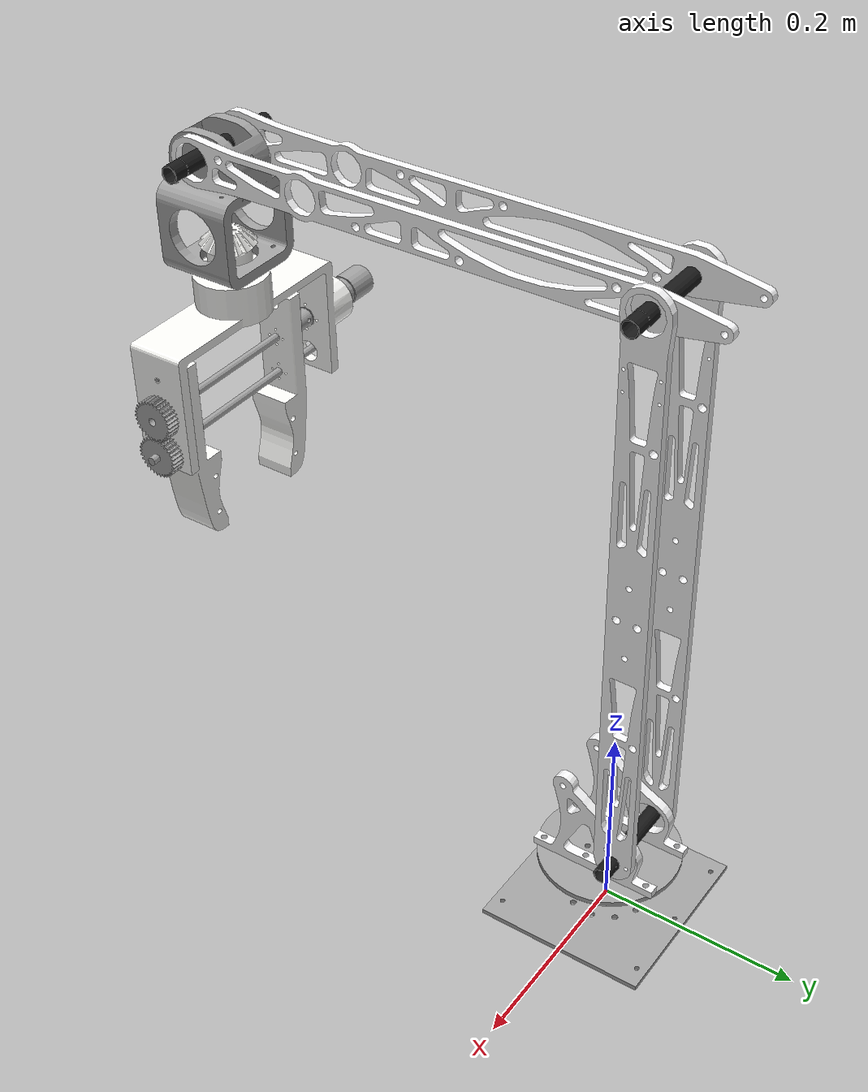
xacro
<?xml version="1.0"?>
<robot xmlns:xacro="http://www.ros.org/wiki/xacro" name="manipulator_urdf">
    <xacro:arg name="initial_positions_file" default="initial_positions.yaml" />

    <!-- Import manipulator_urdf urdf file -->
    <xacro:include filename="$(find manip_description)/urdf/manipulator_urdf.urdf" />

    <!-- Import control_xacro -->
    <xacro:include filename="manipulator_urdf.ros2_control.xacro" />

    <xacro:manipulator_urdf_ros2_control name="FakeSystem" initial_positions_file="$(arg initial_positions_file)"/>

</robot>

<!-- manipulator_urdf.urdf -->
<robot name="manipulator_urdf">

 <!-- Dummy root to base link -->
  <link name="dummy_root"/>
  <joint name="dummy_to_base" type="fixed">
    <parent link="dummy_root"/>
    <child link="base_link"/>
    <origin xyz="0 0 0" rpy="0 0 0"/>
  </joint>

  <link name="base_link">
    <inertial>
      <origin xyz="0.000195357232395832 0 0.0024999999999995" rpy="0 0 0" />
      <mass value="0.139707136084499" />
      <inertia ixx="0.000362153855961995" ixy="1.33420390025088E-19" ixz="-6.69804536161731E-18" iyy="0.000407966760717313" iyz="2.52141449948646E-18" izz="0.000769538503612289" />
    </inertial>
    <visual>
      <origin xyz="0 0 0" rpy="0 0 0" />
      <geometry>
        <mesh filename="package://manip_description/meshes/base_link.STL" />
      </geometry>
      <material name="">
        <color rgba="0.627450980392157 0.627450980392157 0.627450980392157 1" />
      </material>
    </visual>
    <collision>
      <origin xyz="0 0 0" rpy="0 0 0" />
      <geometry>
        <mesh filename="package://manip_description/meshes/base_link.STL" />
      </geometry>
    </collision>
  </link>
  <link name="base_plate2">
    <inertial>
      <origin xyz="0 -2.73796862626519E-06 -5.55111512312578E-16" rpy="0 0 0" />
      <mass value="0.0747522729666689" />
      <inertia ixx="9.24758403358081E-05" ixy="6.22795669521492E-21" ixz="-1.6101929216591E-18" iyy="9.37333665970082E-05" iyz="5.47807548040104E-19" izz="0.000185897739128789" />
    </inertial>
    <visual>
      <origin xyz="0 0 0" rpy="0 0 0" />
      <geometry>
        <mesh filename="package://manip_description/meshes/base_plate2.STL" />
      </geometry>
      <material name="">
        <color rgba="0.627450980392157 0.627450980392157 0.627450980392157 1" />
      </material>
    </visual>
    <collision>
      <origin xyz="0 0 0" rpy="0 0 0" />
      <geometry>
        <mesh filename="package://manip_description/meshes/base_plate2.STL" />
      </geometry>
    </collision>
  </link>
  <joint name="baseplate2_j_base_link" type="revolute">
    <origin xyz="-0.00205319181971286 0 0.0575000000000002" rpy="0 0 0" />
    <parent link="base_link" />
    <child link="base_plate2" />
    <axis xyz="0 0 1" />
    <limit lower="0" upper="6.28" effort="300" velocity="3" />
  </joint>
  <link name="link1_1connector">
    <inertial>
      <origin xyz="-1.78433523512211E-08 0.049721201098077 0.0362112919496935" rpy="0 0 0" />
      <mass value="0.0423060400773229" />
      <inertia ixx="7.17335275476126E-05" ixy="-1.51516466739471E-11" ixz="7.78822258422359E-12" iyy="3.8169797294216E-05" iyz="1.21210221498042E-05" izz="3.42782397609643E-05" />
    </inertial>
    <visual>
      <origin xyz="0 0 0" rpy="0 0 0" />
      <geometry>
        <mesh filename="package://manip_description/meshes/link1_1connector.STL" />
      </geometry>
      <material name="">
        <color rgba="0.96078431372549 0.96078431372549 0.964705882352941 1" />
      </material>
    </visual>
    <collision>
      <origin xyz="0 0 0" rpy="0 0 0" />
      <geometry>
        <mesh filename="package://manip_description/meshes/link1_1connector.STL" />
      </geometry>
    </collision>
  </link>
  <joint name="link1_1connector_j_base_plate_2" type="fixed">
    <origin xyz="0.0300000000000022 -0.055527801921881 0.00650000000000017" rpy="0 0 0" />
    <parent link="base_plate2" />
    <child link="link1_1connector" />
    <axis xyz="0 0 0" />
  </joint>
  <link name="shaft1">
    <inertial>
      <origin xyz="2.22044604925031E-16 -2.22044604925031E-16 -2.22044604925031E-16" rpy="0 0 0" />
      <mass value="0.00614181363776804" />
      <inertia ixx="3.48958785357564E-07" ixy="2.80204717663456E-20" ixz="-1.2457721375434E-19" iyy="8.42636468018142E-06" iyz="-5.1395488726198E-23" izz="8.42636468018142E-06" />
    </inertial>
    <visual>
      <origin xyz="0 0 0" rpy="0 0 0" />
      <geometry>
        <mesh filename="package://manip_description/meshes/shaft1.STL" />
      </geometry>
      <material name="">
        <color rgba="0.0980392156862745 0.0980392156862745 0.0980392156862745 1" />
      </material>
    </visual>
    <collision>
      <origin xyz="0 0 0" rpy="0 0 0" />
      <geometry>
        <mesh filename="package://manip_description/meshes/shaft1.STL" />
      </geometry>
    </collision>
  </link>
  <joint name="shaft1_j_link1_1connector" type="fixed">
    <origin xyz="-0.03 0.081587371771404 0.0289117875999407" rpy="0 0 0" />
    <parent link="link1_1connector" />
    <child link="shaft1" />
    <axis xyz="0 0 0" />
  </joint>
  <link name="link1_1">
    <inertial>
      <origin xyz="-4.64495775176488E-10 -0.000100326015627594 0.283839487614988" rpy="0 0 0" />
      <mass value="0.134763915806832" />
      <inertia ixx="0.00395011652504064" ixy="-3.21643583369989E-13" ixz="2.25726552672763E-12" iyy="0.00392825322370088" iyz="8.89426389737491E-08" izz="2.33007782067884E-05" />
    </inertial>
    <visual>
      <origin xyz="0 0 0" rpy="0 0 0" />
      <geometry>
        <mesh filename="package://manip_description/meshes/link1_1.STL" />
      </geometry>
      <material name="">
        <color rgba="0.96078431372549 0.96078431372549 0.964705882352941 1" />
      </material>
    </visual>
    <collision>
      <origin xyz="0 0 0" rpy="0 0 0" />
      <geometry>
        <mesh filename="package://manip_description/meshes/link1_1.STL" />
      </geometry>
    </collision>
  </link>
  <joint name="link1_1_j_shaft1" type="revolute">
    <origin xyz="0.0390000000000001 0 0" rpy="0 0 0" />
    <parent link="shaft1" />
    <child link="link1_1" />
    <axis xyz="1 0 0" />
    <limit lower="0" upper="1.34" effort="700" velocity="3" />
  </joint>
  <link name="shaft2">
    <inertial>
      <origin xyz="0 0 -4.44089209850063E-16" rpy="0 0 0" />
      <mass value="0.00614181363776804" />
      <inertia ixx="3.48958785357564E-07" ixy="2.80622183067328E-20" ixz="-1.43664514494482E-19" iyy="8.42636468018141E-06" iyz="1.06844162459726E-23" izz="8.42636468018141E-06" />
    </inertial>
    <visual>
      <origin xyz="0 0 0" rpy="0 0 0" />
      <geometry>
        <mesh filename="package://manip_description/meshes/shaft2.STL" />
      </geometry>
      <material name="">
        <color rgba="0.0980392156862745 0.0980392156862745 0.0980392156862745 1" />
      </material>
    </visual>
    <collision>
      <origin xyz="0 0 0" rpy="0 0 0" />
      <geometry>
        <mesh filename="package://manip_description/meshes/shaft2.STL" />
      </geometry>
    </collision>
  </link>
  <joint name="shaft2_j_link1_1" type="fixed">
    <origin xyz="-0.0360000000000091 0 0.58" rpy="0 0 0" />
    <parent link="link1_1" />
    <child link="shaft2" />
    <axis xyz="0 0 0" />
  </joint>
  <link name="link2_1">
    <inertial>
      <origin xyz="4.51383042054943E-09 -0.19237927841626 -0.000741998009010203" rpy="0 0 0" />
      <mass value="0.0786855946436255" />
      <inertia ixx="0.00191785198103841" ixy="4.36717235357529E-11" ixz="-7.63256976813492E-12" iyy="1.19650597389385E-05" iyz="-2.45427436092979E-06" izz="0.00190672624165483" />
    </inertial>
    <visual>
      <origin xyz="0 0 0" rpy="0 0 0" />
      <geometry>
        <mesh filename="package://manip_description/meshes/link2_1.STL" />
      </geometry>
      <material name="">
        <color rgba="0.96078431372549 0.96078431372549 0.964705882352941 1" />
      </material>
    </visual>
    <collision>
      <origin xyz="0 0 0" rpy="0 0 0" />
      <geometry>
        <mesh filename="package://manip_description/meshes/link2_1.STL" />
      </geometry>
    </collision>
  </link>
  <joint name="shaft2_j_link2_1" type="revolute">
    <origin xyz="0.028 0 0" rpy="0 0 0" />
    <parent link="shaft2" />
    <child link="link2_1" />
    <axis xyz="1 0 0" />
    <limit lower="-1.047" upper="0.68" effort="500" velocity="3" />
  </joint>
  <link name="shaft3">
    <inertial>
      <origin xyz="2.22044604925031E-16 1.11022302462516E-16 -4.44089209850063E-16" rpy="0 0 0" />
      <mass value="0.00614181363776805" />
      <inertia ixx="3.48958785357564E-07" ixy="2.77982763609887E-20" ixz="-1.43792784651756E-19" iyy="8.42636468018144E-06" iyz="1.96800054119603E-24" izz="8.42636468018144E-06" />
    </inertial>
    <visual>
      <origin xyz="0 0 0" rpy="0 0 0" />
      <geometry>
        <mesh filename="package://manip_description/meshes/shaft3.STL" />
      </geometry>
      <material name="">
        <color rgba="0.0980392156862745 0.0980392156862745 0.0980392156862745 1" />
      </material>
    </visual>
    <collision>
      <origin xyz="0 0 0" rpy="0 0 0" />
      <geometry>
        <mesh filename="package://manip_description/meshes/shaft3.STL" />
      </geometry>
    </collision>
  </link>
  <joint name="saft3_j_link2_1" type="fixed">
    <origin xyz="-0.0310000000000019 -0.44 0" rpy="0 0 0" />
    <parent link="link2_1" />
    <child link="shaft3" />
    <axis xyz="0 0 0" />
  </joint>
  <link name="link3">
    <inertial>
      <origin xyz="-0.000156441051319289 5.65094705323177E-05 -0.0450975512468108" rpy="0 0 0" />
      <mass value="0.224806547118785" />
      <inertia ixx="0.000456163453198375" ixy="6.46252776641713E-10" ixz="-5.87763952919612E-07" iyy="0.000483845569489242" iyz="6.28694008517293E-08" izz="0.000289692982245641" />
    </inertial>
    <visual>
      <origin xyz="0 0 0" rpy="0 0 0" />
      <geometry>
        <mesh filename="package://manip_description/meshes/link3.STL" />
      </geometry>
      <material name="">
        <color rgba="0.627450980392157 0.627450980392157 0.627450980392157 1" />
      </material>
    </visual>
    <collision>
      <origin xyz="0 0 0" rpy="0 0 0" />
      <geometry>
        <mesh filename="package://manip_description/meshes/link3.STL" />
      </geometry>
    </collision>
  </link>
  <joint name="link3_j_shaft3" type="revolute">
    <origin xyz="0 0 0" rpy="0 0 0" />
    <parent link="shaft3" />
    <child link="link3" />
    <axis xyz="1 0 0" />
    <limit lower="-3.14" upper="0.11" effort="10" velocity="3" />
  </joint>
  <link name="bevel1">
    <inertial>
      <origin xyz="1.57568920888806E-06 8.72524664519148E-07 0.00618798510990271" rpy="0 0 0" />
      <mass value="0.0461593276316264" />
      <inertia ixx="1.04939527608266E-05" ixy="-9.91261610146335E-10" ixz="-6.27975101843376E-10" iyy="1.04918542659061E-05" iyz="-3.50073583797341E-10" izz="1.00345461695118E-05" />
    </inertial>
    <visual>
      <origin xyz="0 0 0" rpy="0 0 0" />
      <geometry>
        <mesh filename="package://manip_description/meshes/bevel1.STL" />
      </geometry>
      <material name="">
        <color rgba="0.964705882352941 0.964705882352941 0.952941176470588 1" />
      </material>
    </visual>
    <collision>
      <origin xyz="0 0 0" rpy="0 0 0" />
      <geometry>
        <mesh filename="package://manip_description/meshes/bevel1.STL" />
      </geometry>
    </collision>
  </link>
  <joint name="bevel1_j_link3" type="revolute">
    <origin xyz="-0.000499499999997655 0 -0.104999996518335" rpy="0 0 0" />
    <parent link="link3" />
    <child link="bevel1" />
    <axis xyz="0 0 1" />
    <limit lower="0" upper="6.283" effort="0.5" velocity="3" />
  </joint>
  <link name="gripper">
    <inertial>
      <origin xyz="-0.00947390080722954 7.99360577730113E-15 -0.032696228721947" rpy="0 0 0" />
      <mass value="0.341464156501705" />
      <inertia ixx="0.000604244616763682" ixy="5.09909105392224E-18" ixz="-0.000143274519057227" iyy="0.00239586527325235" iyz="-2.1241809513346E-18" izz="0.00198563943087105" />
    </inertial>
    <visual>
      <origin xyz="0 0 0" rpy="0 0 0" />
      <geometry>
        <mesh filename="package://manip_description/meshes/gripper.STL" />
      </geometry>
      <material name="">
        <color rgba="0.964705882352941 0.964705882352941 0.952941176470588 1" />
      </material>
    </visual>
    <collision>
      <origin xyz="0 0 0" rpy="0 0 0" />
      <geometry>
        <mesh filename="package://manip_description/meshes/gripper.STL" />
      </geometry>
    </collision>
  </link>
  <joint name="gripper_j_bevel1" type="fixed">
    <origin xyz="0 0 -0.0299324571895392" rpy="0 0 0" />
    <parent link="bevel1" />
    <child link="gripper" />
    <axis xyz="0 0 0" />
    <limit lower="0" upper="6.28" effort="0.5" velocity="3" />
  </joint>
  <link name="ss_rod">
    <inertial>
      <origin xyz="0.0975000000000004 7.66053886991358E-15 0" rpy="0 0 0" />
      <mass value="0.00282743338823081" />
      <inertia ixx="5.65486677646163E-09" ixy="4.44618822704266E-20" ixz="-1.86006780902391E-19" iyy="1.1931062039987E-05" iyz="6.84209305664013E-34" izz="1.1931062039987E-05" />
    </inertial>
    <visual>
      <origin xyz="0 0 0" rpy="0 0 0" />
      <geometry>
        <mesh filename="package://manip_description/meshes/ss_rod.STL" />
      </geometry>
      <material name="">
        <color rgba="0.627450980392157 0.627450980392157 0.627450980392157 1" />
      </material>
    </visual>
    <collision>
      <origin xyz="0 0 0" rpy="0 0 0" />
      <geometry>
        <mesh filename="package://manip_description/meshes/ss_rod.STL" />
      </geometry>
    </collision>
  </link>
  <joint name="ss_rod_j_gripper" type="fixed">
    <origin xyz="-0.102499999999999 0 -0.0410675393287978" rpy="0 0 0" />
    <parent link="gripper" />
    <child link="ss_rod" />
    <axis xyz="0 0 0" />
  </joint>
  <link name="threded_rod_up">
    <inertial>
      <origin xyz="2.22044604925031E-16 7.82707232360735E-15 -1.77635683940025E-15" rpy="0 0 0" />
      <mass value="0.0121489228511336" />
      <inertia ixx="9.39627397423046E-08" ixy="2.1935928770699E-19" ixz="-1.00881315866112E-18" iyy="6.33226212195255E-05" iyz="3.53881103869049E-33" izz="6.33226212195255E-05" />
    </inertial>
    <visual>
      <origin xyz="0 0 0" rpy="0 0 0" />
      <geometry>
        <mesh filename="package://manip_description/meshes/threded_rod_up.STL" />
      </geometry>
      <material name="">
        <color rgba="0.627450980392157 0.627450980392157 0.627450980392157 1" />
      </material>
    </visual>
    <collision>
      <origin xyz="0 0 0" rpy="0 0 0" />
      <geometry>
        <mesh filename="package://manip_description/meshes/threded_rod_up.STL" />
      </geometry>
    </collision>
  </link>
  <joint name="threded_rod_up_j_gripper" type="fixed">
    <origin xyz="-0.017499999999999 0 -0.0770675393287958" rpy="0 0 0" />
    <parent link="gripper" />
    <child link="threded_rod_up" />
    <axis xyz="0 0 0" />
  </joint>
  <link name="claw2">
    <inertial>
      <origin xyz="-0.00296412475331143 -3.50262785014932E-06 -0.0565127254779711" rpy="0 0 0" />
      <mass value="0.134410672799194" />
      <inertia ixx="0.000371952908819462" ixy="5.50044665304092E-09" ixz="3.30601032585245E-05" iyy="0.000362575120952868" iyz="-2.02999010553453E-09" izz="2.71292076611256E-05" />
    </inertial>
    <visual>
      <origin xyz="0 0 0" rpy="0 0 0" />
      <geometry>
        <mesh filename="package://manip_description/meshes/claw2.STL" />
      </geometry>
      <material name="">
        <color rgba="0.964705882352941 0.964705882352941 0.952941176470588 1" />
      </material>
    </visual>
    <collision>
      <origin xyz="0 0 0" rpy="0 0 0" />
      <geometry>
        <mesh filename="package://manip_description/meshes/claw2.STL" />
      </geometry>
    </collision>
  </link>
  <joint name="claw2_j_threded_rod_up" type="prismatic">
    <origin xyz="-0.0337770678111837 0 0" rpy="0 0 0" />
    <parent link="threded_rod_up" />
    <child link="claw2" />
    <axis xyz="1 0 0" />
    <limit lower="0.00" upper="0.04" effort="3" velocity="3" />
  </joint>
  <link name="claw1">
    <inertial>
      <origin xyz="-0.00575880743550372 3.50262773646248E-06 -0.0565127254779658" rpy="0 0 0" />
      <mass value="0.134410672799193" />
      <inertia ixx="0.00037195290881946" ixy="5.50044657542522E-09" ixz="-3.30601032585136E-05" iyy="0.000362575120952863" iyz="2.02998931355451E-09" izz="2.71292076611234E-05" />
    </inertial>
    <visual>
      <origin xyz="0 0 0" rpy="0 0 0" />
      <geometry>
        <mesh filename="package://manip_description/meshes/claw1.STL" />
      </geometry>
      <material name="">
        <color rgba="0.964705882352941 0.964705882352941 0.952941176470588 1" />
      </material>
    </visual>
    <collision>
      <origin xyz="0 0 0" rpy="0 0 0" />
      <geometry>
        <mesh filename="package://manip_description/meshes/claw1.STL" />
      </geometry>
    </collision>
  </link>
  <joint name="claw1_j_threded_rod_up" type="prismatic">
    <origin xyz="0.1025 0 -0.000298999999999827" rpy="0 0 0" />
    <parent link="threded_rod_up" />
    <child link="claw1" />
    <axis xyz="1 0 0" />
    <limit lower="-0.045" upper="0.0" effort="3" velocity="3" />
    <mimic joint="claw2_j_threded_rod_up" multiplier="-1.0" offset="0.0"/>
  </joint>
  <link name="motor">
    <inertial>
      <origin xyz="-0.043637951435167 7.56764734016757E-06 1.05474587688281E-05" rpy="0 0 0" />
      <mass value="0.0558864492200027" />
      <inertia ixx="5.79372255970093E-06" ixy="1.39156228330173E-08" ixz="1.93949918217533E-08" iyy="3.78532048080649E-05" iyz="5.61857630483807E-09" izz="3.7857004489853E-05" />
    </inertial>
    <visual>
      <origin xyz="0 0 0" rpy="0 0 0" />
      <geometry>
        <mesh filename="package://manip_description/meshes/motor.STL" />
      </geometry>
      <material name="">
        <color rgba="0.627450980392157 0.627450980392157 0.627450980392157 1" />
      </material>
    </visual>
    <collision>
      <origin xyz="0 0 0" rpy="0 0 0" />
      <geometry>
        <mesh filename="package://manip_description/meshes/motor.STL" />
      </geometry>
    </collision>
  </link>
  <joint name="motor_j_gripper" type="fixed">
    <origin xyz="-0.0999999999999981 0 -0.0770675393287972" rpy="0 0 0" />
    <parent link="gripper" />
    <child link="motor" />
    <axis xyz="0 0 0" />
  </joint>
  <link name="shaft_coupler">
    <inertial>
      <origin xyz="3.43275563530199E-09 2.51912170445845E-06 -1.8443343692276E-06" rpy="0 0 0" />
      <mass value="0.00642699718557648" />
      <inertia ixx="2.90757438236863E-07" ixy="-7.46111633042868E-14" ixz="-1.46031394690198E-13" iyy="6.22303514989085E-07" iyz="-1.47141090258298E-10" izz="6.22210285079933E-07" />
    </inertial>
    <visual>
      <origin xyz="0 0 0" rpy="0 0 0" />
      <geometry>
        <mesh filename="package://manip_description/meshes/shaft_coupler.STL" />
      </geometry>
      <material name="">
        <color rgba="0.627450980392157 0.627450980392157 0.627450980392157 1" />
      </material>
    </visual>
    <collision>
      <origin xyz="0 0 0" rpy="0 0 0" />
      <geometry>
        <mesh filename="package://manip_description/meshes/shaft_coupler.STL" />
      </geometry>
    </collision>
  </link>
  <joint name="shaft_coupler_j_gripper" type="fixed">
    <origin xyz="-0.0825 -0.00017997 -0.076937" rpy="0 0 0" />
    <parent link="gripper" />
    <child link="shaft_coupler" />
    <axis xyz="0 0 0" />
  </joint>
  <link name="gear1">
    <inertial>
      <origin xyz="0.0107326910509893 -4.05231403988182E-15 -3.99680288865056E-15" rpy="0 0 0" />
      <mass value="0.0170959118700181" />
      <inertia ixx="2.66648678784873E-06" ixy="3.60545421608951E-19" ixz="3.76705672624576E-20" iyy="2.15564618007614E-06" iyz="-1.24153481093661E-15" izz="2.15564617597141E-06" />
    </inertial>
    <visual>
      <origin xyz="0 0 0" rpy="0 0 0" />
      <geometry>
        <mesh filename="package://manip_description/meshes/gear1.STL" />
      </geometry>
      <material name="">
        <color rgba="0.627450980392157 0.627450980392157 0.627450980392157 1" />
      </material>
    </visual>
    <collision>
      <origin xyz="0 0 0" rpy="0 0 0" />
      <geometry>
        <mesh filename="package://manip_description/meshes/gear1.STL" />
      </geometry>
    </collision>
  </link>
  <joint name="gear1_j_gripper" type="fixed">
    <origin xyz="0.1 0 -0.077068" rpy="0 0 0" />
    <parent link="gripper" />
    <child link="gear1" />
    <axis xyz="0 0 0" />
  </joint>
  <link name="thrededrod_down">
    <inertial>
      <origin xyz="-2.22044604925031E-16 8.27116153345742E-15 -1.33226762955019E-15" rpy="0 0 0" />
      <mass value="0.0121489228511336" />
      <inertia ixx="9.39627397423046E-08" ixy="2.1935928770699E-19" ixz="-1.00881315866112E-18" iyy="6.33226212195255E-05" iyz="3.53881103869049E-33" izz="6.33226212195255E-05" />
    </inertial>
    <visual>
      <origin xyz="0 0 0" rpy="0 0 0" />
      <geometry>
        <mesh filename="package://manip_description/meshes/thrededrod_down.STL" />
      </geometry>
      <material name="">
        <color rgba="0.627450980392157 0.627450980392157 0.627450980392157 1" />
      </material>
    </visual>
    <collision>
      <origin xyz="0 0 0" rpy="0 0 0" />
      <geometry>
        <mesh filename="package://manip_description/meshes/thrededrod_down.STL" />
      </geometry>
    </collision>
  </link>
  <joint name="threded_rod_down_j_gripper" type="fixed">
    <origin xyz="0.0025 0 -0.11487" rpy="0 0 0" />
    <parent link="gripper" />
    <child link="thrededrod_down" />
    <axis xyz="0 0 0" />
  </joint>
  <link name="gear2">
    <inertial>
      <origin xyz="0.0107326910509891 -1.37667655053519E-14 0" rpy="0 0 0" />
      <mass value="0.0170959118700137" />
      <inertia ixx="2.66648678784784E-06" ixy="4.05407438152039E-19" ixz="1.20367294634015E-20" iyy="2.15564617709311E-06" iyz="2.21072179691744E-15" izz="2.15564617895344E-06" />
    </inertial>
    <visual>
      <origin xyz="0 0 0" rpy="0 0 0" />
      <geometry>
        <mesh filename="package://manip_description/meshes/gear2.STL" />
      </geometry>
      <material name="">
        <color rgba="0.627450980392157 0.627450980392157 0.627450980392157 1" />
      </material>
    </visual>
    <collision>
      <origin xyz="0 0 0" rpy="0 0 0" />
      <geometry>
        <mesh filename="package://manip_description/meshes/gear2.STL" />
      </geometry>
    </collision>
  </link>
  <joint name="gear2_j_gripper" type="fixed">
    <origin xyz="0.1 0 -0.11487" rpy="0 0 0" />
    <parent link="gripper" />
    <child link="gear2" />
    <axis xyz="0 0 0" />
  </joint>
  <link name="link2_2">
    <inertial>
      <origin xyz="-4.51383175281705E-09 -0.192379652731722 0.000637447708020655" rpy="0 0 0" />
      <mass value="0.0786855940633513" />
      <inertia ixx="0.00191785196637821" ixy="-4.36675770328836E-11" ixz="-7.66566324060629E-12" iyy="1.19629535379423E-05" iyz="1.42455549814404E-06" izz="0.00190672833319192" />
    </inertial>
    <visual>
      <origin xyz="0 0 0" rpy="0 0 0" />
      <geometry>
        <mesh filename="package://manip_description/meshes/link2_2.STL" />
      </geometry>
      <material name="">
        <color rgba="0.96078431372549 0.96078431372549 0.964705882352941 1" />
      </material>
    </visual>
    <collision>
      <origin xyz="0 0 0" rpy="0 0 0" />
      <geometry>
        <mesh filename="package://manip_description/meshes/link2_2.STL" />
      </geometry>
    </collision>
  </link>
  <joint name="shaft2_j_link2_2" type="revolute">
    <origin xyz="-0.0340000000000003 0 0" rpy="0 0 0" />
    <parent link="shaft2" />
    <child link="link2_2" />
    <axis xyz="1 0 0" />
    <limit lower="-1.047" upper="0.68" effort="500" velocity="3" />
    <mimic joint="shaft2_j_link2_1" multiplier="1.0" offset="0.0"/>
  </joint>
  <link name="link1_2">
    <inertial>
      <origin xyz="-4.64495997221093E-10 -0.000100326015642249 0.283839487614995" rpy="0 0 0" />
      <mass value="0.13476391580683" />
      <inertia ixx="0.00395011652504059" ixy="-3.21643551710228E-13" ixz="2.25726564739554E-12" iyy="0.00392825322370083" iyz="8.89426389718591E-08" izz="2.33007782067883E-05" />
    </inertial>
    <visual>
      <origin xyz="0 0 0" rpy="0 0 0" />
      <geometry>
        <mesh filename="package://manip_description/meshes/link1_2.STL" />
      </geometry>
      <material name="">
        <color rgba="0.96078431372549 0.96078431372549 0.964705882352941 1" />
      </material>
    </visual>
    <collision>
      <origin xyz="0 0 0" rpy="0 0 0" />
      <geometry>
        <mesh filename="package://manip_description/meshes/link1_2.STL" />
      </geometry>
    </collision>
  </link>
  <joint name="link1_2_j_shaft1" type="revolute">
    <origin xyz="-0.0389999999999997 0 0" rpy="0 0 0" />
    <parent link="shaft1" />
    <child link="link1_2" />
    <axis xyz="1 0 0" />
    <limit lower="0" upper="1.57" effort="700" velocity="3" />
    <mimic joint="link1_1_j_shaft1" multiplier="1.0" offset="0.0"/>
  </joint>
  <link name="link1_2_connector">
    <inertial>
      <origin xyz="-1.78433527953104E-08 0.0497212010980761 0.0362112919496934" rpy="0 0 0" />
      <mass value="0.0423060400773221" />
      <inertia ixx="7.17335275476114E-05" ixy="-1.51516465982144E-11" ixz="7.78822265030405E-12" iyy="3.81697972942157E-05" iyz="1.21210221498042E-05" izz="3.42782397609634E-05" />
    </inertial>
    <visual>
      <origin xyz="0 0 0" rpy="0 0 0" />
      <geometry>
        <mesh filename="package://manip_description/meshes/link1_2_connector.STL" />
      </geometry>
      <material name="">
        <color rgba="0.96078431372549 0.96078431372549 0.964705882352941 1" />
      </material>
    </visual>
    <collision>
      <origin xyz="0 0 0" rpy="0 0 0" />
      <geometry>
        <mesh filename="package://manip_description/meshes/link1_2_connector.STL" />
      </geometry>
    </collision>
  </link>
  <joint name="link1_2connector_j_base_plate2" type="fixed">
    <origin xyz="-0.0299999999999969 -0.0555278019218802 0.0064999999999994" rpy="0 0 0" />
    <parent link="base_plate2" />
    <child link="link1_2_connector" />
    <axis xyz="0 0 0" />
  </joint>

</robot>
